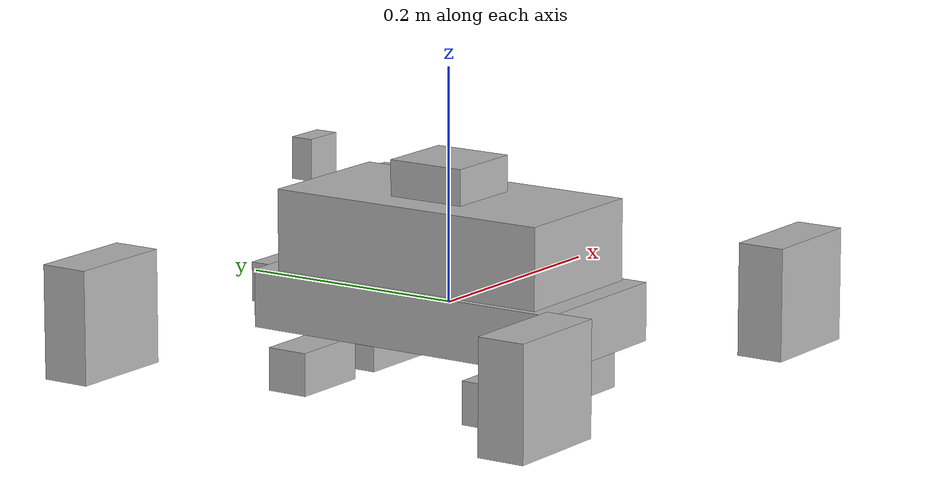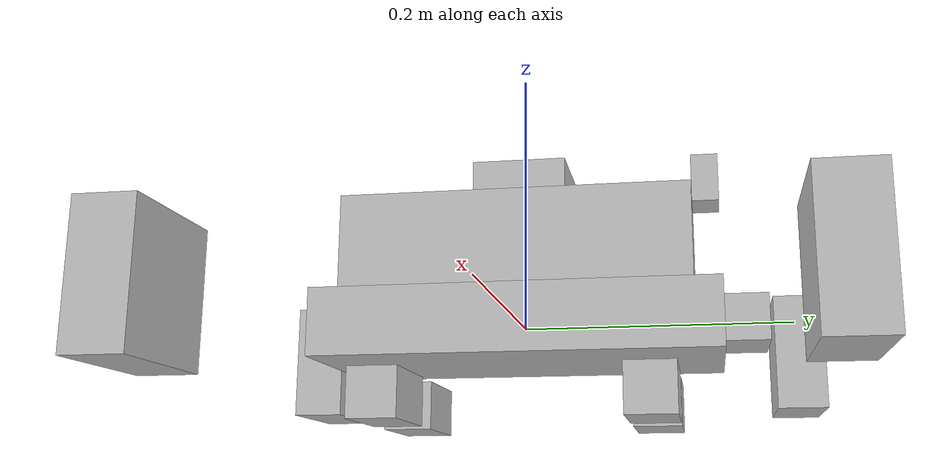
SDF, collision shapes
<?xml version="1.0" ?>
<sdf version="1.11">
  <model name="robot_urdf_export_final">
    <link name="base_link">
      <inertial>
        <mass>0.0001</mass>
        <inertia>
          <ixx>1e-09</ixx>
          <ixy>0</ixy>
          <ixz>0</ixz>
          <iyy>1e-09</iyy>
          <iyz>0</iyz>
          <izz>1e-09</izz>
        </inertia>
      </inertial>
    </link>
    <link name="bl_wheel_1">
      <pose relative_to="__model__">-0.09750000179931512 0.1076170507667783 -0.0001910611387656491 1.3877787807814733e-16 -1.1485604134442441e-14 -1.2281842209915672e-15</pose>
      <inertial>
        <mass>0.1449437592188408</mass>
        <inertia>
          <ixx>0.00010654272201079517</ixx>
          <ixy>2.168404344971009e-19</ixy>
          <ixz>4.743384504624082e-20</ixz>
          <iyy>0.00017047197881125617</iyy>
          <iyz>6.056285572868247e-20</iyz>
          <izz>0.00010654272201080081</izz>
        </inertia>
      </inertial>
      <visual name="bl_wheel_1__body1_visual">
        <geometry>
          <mesh>
            <scale>1 1 1</scale>
            <uri>meshes/bl_wheel_1/body1_visual.obj</uri>
          </mesh>
        </geometry>
      </visual>
      <collision name="bl_wheel_1__body1_collision">
        <pose relative_to="__model__">-0.09750000179931531 0.1076170507667783 -0.00019106226380321444 -0.0 -1.5707963267948966 0</pose>
        <geometry>
          <box>
            <size>0.09699999999999999 0.041999999999999996 0.09699999999999999</size>
          </box>
        </geometry>
      </collision>
    </link>
    <link name="chassis_1">
      <pose relative_to="__model__">0.000499998200684928 -0.00038294921086993837 -0.01369106116111193 -1.1679893163751844e-14 1.124100812432971e-14 1.5707963267948954</pose>
      <inertial>
        <pose>0.0014653952723043917 1.3863354933564373e-19 0.05260774865619107 1.1241008124329724e-14 1.1679893163751831e-14 -1.5707963267948954</pose>
        <mass>1.7958141054031582</mass>
        <inertia>
          <ixx>0.007164588768327979</ixx>
          <ixy>-4.646145122279288e-17</ixy>
          <ixz>-7.17945126092745e-17</ixz>
          <iyy>0.012760657231743477</iyy>
          <iyz>0.00011964838893943998</iyz>
          <izz>0.012436152193956957</izz>
        </inertia>
      </inertial>
      <visual name="chassis_1__casing_visual">
        <geometry>
          <mesh>
            <scale>1 1 1</scale>
            <uri>meshes/chassis_1/casing_visual.obj</uri>
          </mesh>
        </geometry>
      </visual>
      <visual name="chassis_1__battery_visual">
        <geometry>
          <mesh>
            <scale>1 1 1</scale>
            <uri>meshes/chassis_1/battery_visual.obj</uri>
          </mesh>
        </geometry>
      </visual>
      <visual name="chassis_1__powerbank_visual">
        <geometry>
          <mesh>
            <scale>1 1 1</scale>
            <uri>meshes/chassis_1/powerbank_visual.obj</uri>
          </mesh>
        </geometry>
      </visual>
      <visual name="chassis_1__upper_plate_visual">
        <geometry>
          <mesh>
            <scale>1 1 1</scale>
            <uri>meshes/chassis_1/upper_plate_visual.obj</uri>
          </mesh>
        </geometry>
      </visual>
      <collision name="chassis_1__casing_collision">
        <pose relative_to="__model__">0.0004999982006848392 -0.0003829492108701249 0.011308938838888883 -0.0 -1.5707963267948966 0</pose>
        <geometry>
          <box>
            <size>0.050000000000003465 0.145 0.29700000000000004</size>
          </box>
        </geometry>
      </collision>
      <collision name="chassis_1__battery_collision">
        <pose relative_to="__model__">0.000499998200684928 0.03961705078913 0.0008089388388886576 -0.0 -1.5707963267948966 0</pose>
        <geometry>
          <box>
            <size>0.025 0.045 0.135</size>
          </box>
        </geometry>
      </collision>
      <collision name="chassis_1__powerbank_collision">
        <pose relative_to="__model__">0.0004999982006848214 -0.030382949210869984 0.0028089388388894475 -0.0 -1.5707963267948966 0</pose>
        <geometry>
          <box>
            <size>0.029000000000000005 0.071 0.11000000000000001</size>
          </box>
        </geometry>
      </collision>
      <collision name="chassis_1__upper_plate_collision">
        <pose relative_to="__model__">0.0004999982006836313 -0.0003829492108684551 0.07130893883888692 -0.0 -1.5707963267948966 0</pose>
        <geometry>
          <box>
            <size>0.06999999999999779 0.132 0.257</size>
          </box>
        </geometry>
      </collision>
    </link>
    <link name="camera_1">
      <pose relative_to="__model__">0.000499998200684928 -0.00038294921086993837 -0.01369106116111193 -1.1679893163751844e-14 1.124100812432971e-14 1.5707963267948954</pose>
      <inertial>
        <pose>-3.846139202868901e-13 -0.13362720676622877 0.136 1.1241008124329724e-14 1.1679893163751831e-14 -1.5707963267948954</pose>
        <mass>0.0689942049710412</mass>
        <inertia>
          <ixx>1.143158030199624e-05</ixx>
          <ixy>1.9567350466168955e-16</ixy>
          <ixz>2.168404344971009e-19</ixz>
          <iyy>7.4980389861431865e-06</iyy>
          <iyz>3.3881317890172014e-21</iyz>
          <izz>7.498039092515996e-06</izz>
        </inertia>
      </inertial>
      <visual name="camera_1__camera_visual">
        <geometry>
          <mesh>
            <scale>1 1 1</scale>
            <uri>meshes/camera_1/camera_visual.obj</uri>
          </mesh>
        </geometry>
      </visual>
      <collision name="camera_1__camera_collision">
        <pose relative_to="__model__">0.13899999820068326 -0.00038294921086836855 0.1223089388388894 -0.0 -1.5707963267948966 0</pose>
        <geometry>
          <box>
            <size>0.03600000000000001 0.036000000536441805 0.020000000000000177</size>
          </box>
        </geometry>
      </collision>
    </link>
    <link name="lidar_1">
      <pose relative_to="__model__">0.0004999982006852988 -0.00038294921087043575 -0.04869106116111194 -1.1679893163751844e-14 1.124100812432971e-14 1.5707963267948954</pose>
      <inertial>
        <pose>-8.9607589936536e-18 -1.3185095470370538e-17 0.188 1.1241008124329724e-14 1.1679893163751831e-14 -1.5707963267948954</pose>
        <mass>1.9938824634354682</mass>
        <inertia>
          <ixx>0.0013344058386542332</ixx>
          <ixy>1.0587911840678754e-22</ixy>
          <ixz>2.7647155398380363e-18</ixz>
          <iyy>0.00133440583865415</iyy>
          <iyz>-1.3552527156068805e-20</iyz>
          <izz>0.0012212530088542076</izz>
        </inertia>
      </inertial>
      <visual name="lidar_1__lidar_body_visual">
        <geometry>
          <mesh>
            <scale>1 1 1</scale>
            <uri>meshes/lidar_1/lidar_body_visual.obj</uri>
          </mesh>
        </geometry>
      </visual>
      <collision name="lidar_1__lidar_body_collision">
        <pose relative_to="__model__">0.0004999982006827209 -0.0003829492108679533 0.13930893883888767 -0.0 -1.5707963267948966 0</pose>
        <geometry>
          <box>
            <size>0.06600000000000002 0.06999999999999999 0.06999999999999999</size>
          </box>
        </geometry>
      </collision>
    </link>
    <link name="hs_1">
      <pose relative_to="__model__">0.000499998200684928 -0.00038294921086993837 -0.01369106116111193 -1.1679893163751844e-14 1.124100812432971e-14 1.5707963267948954</pose>
      <inertial>
        <pose>-1.0167997441069341e-13 -0.16148736633795835 0.027425327037889732 1.1241008124329724e-14 1.1679893163751831e-14 -1.5707963267948954</pose>
        <mass>0.44159431453577835</mass>
        <inertia>
          <ixx>0.000191067815977005</ixx>
          <ixy>6.847380464285874e-16</ixy>
          <ixz>-2.86665840638781e-06</ixz>
          <iyy>6.834453630726912e-05</iyy>
          <iyz>2.963632757171236e-16</iyz>
          <izz>0.00017617307329049169</izz>
        </inertia>
      </inertial>
      <visual name="hs_1__hs_visual">
        <geometry>
          <mesh>
            <scale>1 1 1</scale>
            <uri>meshes/hs_1/hs_visual.obj</uri>
          </mesh>
        </geometry>
      </visual>
      <collision name="hs_1__hs_collision">
        <pose relative_to="__model__">0.16524999820068464 -0.0003829492108698229 0.013308938838890165 -0.0 -1.5707963267948966 0</pose>
        <geometry>
          <box>
            <size>0.034 0.06475000000000039 0.03249999999999977</size>
          </box>
        </geometry>
      </collision>
    </link>
    <link name="br_wheel_1">
      <pose relative_to="__model__">-0.09750000179931544 -0.1073829492332218 -0.000191061138765658 1.387778780781489e-16 -1.1485604134442441e-14 -1.2281842209915672e-15</pose>
      <inertial>
        <mass>0.1449437592188408</mass>
        <inertia>
          <ixx>0.00010654272201079539</ixx>
          <ixy>2.168404344971009e-19</ixy>
          <ixz>4.743384504624082e-20</ixz>
          <iyy>0.00017047197881125595</iyy>
          <iyz>6.056285572868247e-20</iyz>
          <izz>0.00010654272201079994</izz>
        </inertia>
      </inertial>
      <visual name="br_wheel_1__body1_visual">
        <geometry>
          <mesh>
            <scale>1 1 1</scale>
            <uri>meshes/br_wheel_1/body1_visual.obj</uri>
          </mesh>
        </geometry>
      </visual>
      <collision name="br_wheel_1__body1_collision">
        <pose relative_to="__model__">-0.09750000179931563 -0.1073829492332218 -0.00019106226380322333 -0.0 -1.5707963267948966 0</pose>
        <geometry>
          <box>
            <size>0.09699999999999999 0.041999999999999996 0.09699999999999999</size>
          </box>
        </geometry>
      </collision>
    </link>
    <link name="fr_wheel_1">
      <pose relative_to="__model__">0.09749999820068486 -0.10738294923322207 -0.00019106113876340202 1.387778780781489e-16 -1.1485604134442441e-14 -1.2281842209915672e-15</pose>
      <inertial>
        <mass>0.1449437592188408</mass>
        <inertia>
          <ixx>0.00010654272201079582</ixx>
          <ixy>2.168404344971009e-19</ixy>
          <ixz>4.785736151986797e-20</ixz>
          <iyy>0.00017047197881125639</iyy>
          <iyz>6.098637220230962e-20</iyz>
          <izz>0.00010654272201080037</izz>
        </inertia>
      </inertial>
      <visual name="fr_wheel_1__body1_visual">
        <geometry>
          <mesh>
            <scale>1 1 1</scale>
            <uri>meshes/fr_wheel_1/body1_visual.obj</uri>
          </mesh>
        </geometry>
      </visual>
      <collision name="fr_wheel_1__body1_collision">
        <pose relative_to="__model__">0.09749999820068467 -0.10738294923322207 -0.00019106226380096735 -0.0 -1.5707963267948966 0</pose>
        <geometry>
          <box>
            <size>0.09699999999999999 0.041999999999999996 0.09699999999999999</size>
          </box>
        </geometry>
      </collision>
    </link>
    <link name="fl_wheel_1">
      <pose relative_to="__model__">0.09749999820068499 0.10761705076677813 -0.00019106113876333098 1.3877787807814733e-16 -1.1485604134442441e-14 -1.2281842209915672e-15</pose>
      <inertial>
        <mass>0.1449437592188408</mass>
        <inertia>
          <ixx>0.00010654272201079539</ixx>
          <ixy>2.168404344971009e-19</ixy>
          <ixz>4.743384504624082e-20</ixz>
          <iyy>0.00017047197881125639</iyy>
          <iyz>6.056285572868247e-20</iyz>
          <izz>0.00010654272201079994</izz>
        </inertia>
      </inertial>
      <visual name="fl_wheel_1__body1_visual">
        <geometry>
          <mesh>
            <scale>1 1 1</scale>
            <uri>meshes/fl_wheel_1/body1_visual.obj</uri>
          </mesh>
        </geometry>
      </visual>
      <collision name="fl_wheel_1__body1_collision">
        <pose relative_to="__model__">0.09749999820068479 0.10761705076677813 -0.0001910622638008963 -0.0 -1.5707963267948966 0</pose>
        <geometry>
          <box>
            <size>0.09699999999999999 0.041999999999999996 0.09699999999999999</size>
          </box>
        </geometry>
      </collision>
    </link>
    <link name="imu_1">
      <pose relative_to="__model__">0.000499998200684928 -0.00038294921086993837 -0.01369106116111193 -1.1679893163751844e-14 1.124100812432971e-14 1.5707963267948954</pose>
      <inertial>
        <pose>-1.5937592292329663e-17 -0.01049999999999996 0.05675000000000001 1.1241008124329724e-14 1.1679893163751831e-14 -1.5707963267948954</pose>
        <mass>0.056166749999999974</mass>
        <inertia>
          <ixx>4.139957531250154e-06</ixx>
          <ixy>1.9852334701272664e-21</ixy>
          <ixz>-1.0164395367051604e-20</ixz>
          <iyy>2.725257515625047e-06</iyy>
          <iyz>3.017554874593445e-20</iyz>
          <izz>5.159150015624989e-06</izz>
        </inertia>
      </inertial>
      <visual name="imu_1__imu_visual">
        <geometry>
          <mesh>
            <scale>1 1 1</scale>
            <uri>meshes/imu_1/imu_visual.obj</uri>
          </mesh>
        </geometry>
      </visual>
      <collision name="imu_1__imu_collision">
        <pose relative_to="__model__">0.010999998200684305 -0.00038294921086940326 0.04305893883888817 -0.0 -1.5707963267948966 0</pose>
        <geometry>
          <box>
            <size>0.013499999999999996 0.026499999999999985 0.020000000000000004</size>
          </box>
        </geometry>
      </collision>
    </link>
    <link name="bl_motor_1">
      <pose relative_to="__model__">-0.010757026294846704 -0.0004141098856474734 -0.06070332375164084 -1.1679893163751845e-14 1.1236020794336278e-14 1.5707963267948954</pose>
      <inertial>
        <pose>0.043582546115938696 0.08674297550446795 0.06746351638411556 1.1236020794336292e-14 1.1679893163751833e-14 -1.5707963267948954</pose>
        <mass>0.15472387911182625</mass>
        <inertia>
          <ixx>5.6216088126908974e-05</ixx>
          <ixy>3.2526065174565133e-19</ixy>
          <ixz>3.3881317890172014e-19</ixz>
          <iyy>2.6350023109938947e-05</iyy>
          <iyz>2.7037138135237697e-07</iyz>
          <izz>5.616366154389857e-05</izz>
        </inertia>
      </inertial>
      <visual name="bl_motor_1__fr_motor_visual">
        <geometry>
          <mesh>
            <scale>1 1 1</scale>
            <uri>meshes/bl_motor_1/fr_motor_visual.obj</uri>
          </mesh>
        </geometry>
      </visual>
      <collision name="bl_motor_1__fr_motor_collision">
        <pose relative_to="__model__">-0.09750000179931538 0.05051705076677825 0.00680893773619696 -0.0 -1.5707963267948966 0</pose>
        <geometry>
          <box>
            <size>0.037000000000000005 0.07220000000000013 0.036999999999999984</size>
          </box>
        </geometry>
      </collision>
    </link>
    <link name="fr_motor_1">
      <pose relative_to="__model__">-0.01025702629484666 -0.00041410988564768644 -0.060703323751642814 -1.1652137588136216e-14 1.1243501789326427e-14 1.5707963267948954</pose>
      <inertial>
        <pose>-0.040952635689792134 -0.10775702449553214 0.06745842478335883 1.1243501789326441e-14 1.1652137588136204e-14 -1.5707963267948954</pose>
        <mass>0.15483729311989491</mass>
        <inertia>
          <ixx>5.644373880702634e-05</ixx>
          <ixy>-7.589415207398531e-19</ixy>
          <ixz>1.0842021724855044e-19</ixz>
          <iyy>2.635600961746476e-05</iyy>
          <iyz>-3.052300956287124e-07</iyz>
          <izz>5.638583607955232e-05</izz>
        </inertia>
      </inertial>
      <visual name="fr_motor_1__bl_motor_visual">
        <geometry>
          <mesh>
            <scale>1 1 1</scale>
            <uri>meshes/fr_motor_1/bl_motor_visual.obj</uri>
          </mesh>
        </geometry>
      </visual>
      <collision name="fr_motor_1__bl_motor_collision">
        <pose relative_to="__model__">0.09749999820068452 -0.04948294923322218 0.006808937736198835 -0.0 -1.5707963267948966 0</pose>
        <geometry>
          <box>
            <size>0.036999999999999984 0.07379999999999982 0.03699999999999999</size>
          </box>
        </geometry>
      </collision>
    </link>
    <link name="br_motor_1">
      <pose relative_to="__model__">-0.010757026294846792 -0.00041410988564765104 -0.0607033237516428 -1.1679893163751844e-14 1.1247947018233617e-14 1.5707963267948954</pose>
      <inertial>
        <pose>-0.04095263568979211 0.08674297550446802 0.06745842478335883 1.1247947018233631e-14 1.1679893163751831e-14 -1.5707963267948954</pose>
        <mass>0.15483729311989491</mass>
        <inertia>
          <ixx>5.644373880702634e-05</ixx>
          <ixy>2.168404344971009e-19</ixy>
          <ixz>1.6263032587282567e-19</ixz>
          <iyy>2.6356009617466494e-05</iyy>
          <iyz>-3.0523009562884114e-07</iyz>
          <izz>5.638583607955362e-05</izz>
        </inertia>
      </inertial>
      <visual name="br_motor_1__fl_motor_visual">
        <geometry>
          <mesh>
            <scale>1 1 1</scale>
            <uri>meshes/br_motor_1/fl_motor_visual.obj</uri>
          </mesh>
        </geometry>
      </visual>
      <collision name="br_motor_1__fl_motor_collision">
        <pose relative_to="__model__">-0.09750000179931564 -0.04948294923322191 0.006808937736196592 -0.0 -1.5707963267948966 0</pose>
        <geometry>
          <box>
            <size>0.03699999999999999 0.07379999999999982 0.036999999999999984</size>
          </box>
        </geometry>
      </collision>
    </link>
    <link name="fl_motor_1">
      <pose relative_to="__model__">-0.010257026294846767 -0.00041410988564738466 -0.0607033237516408 -1.1707648739367473e-14 1.1245019672367905e-14 1.5707963267948954</pose>
      <inertial>
        <pose>0.043582546115938675 -0.1077570244955321 0.06746351638411556 1.1245019672367919e-14 1.170764873936746e-14 -1.5707963267948954</pose>
        <mass>0.15472387911182625</mass>
        <inertia>
          <ixx>5.6216088126909245e-05</ixx>
          <ixy>0.0</ixy>
          <ixz>2.846030702774449e-19</ixz>
          <iyy>2.6350023109937646e-05</iyy>
          <iyz>2.703713813525667e-07</iyz>
          <izz>5.616366154389575e-05</izz>
        </inertia>
      </inertial>
      <visual name="fl_motor_1__br_motor_visual">
        <geometry>
          <mesh>
            <scale>1 1 1</scale>
            <uri>meshes/fl_motor_1/br_motor_visual.obj</uri>
          </mesh>
        </geometry>
      </visual>
      <collision name="fl_motor_1__br_motor_collision">
        <pose relative_to="__model__">0.09749999820068458 0.05051705076677809 0.006808937736199279 -0.0 -1.5707963267948966 0</pose>
        <geometry>
          <box>
            <size>0.037000000000000005 0.07220000000000013 0.03699999999999999</size>
          </box>
        </geometry>
      </collision>
    </link>
    <joint name="rigid_18" type="fixed">
      <parent>chassis_1</parent>
      <child>lidar_1</child>
      <axis/>
    </joint>
    <joint name="rigid_19" type="fixed">
      <parent>chassis_1</parent>
      <child>camera_1</child>
      <axis/>
    </joint>
    <joint name="rigid_20" type="fixed">
      <parent>chassis_1</parent>
      <child>imu_1</child>
      <axis/>
    </joint>
    <joint name="rigid_21" type="fixed">
      <parent>chassis_1</parent>
      <child>hs_1</child>
      <axis/>
    </joint>
    <joint name="rigid_22" type="fixed">
      <parent>chassis_1</parent>
      <child>fr_motor_1</child>
      <axis/>
    </joint>
    <joint name="rigid_23" type="fixed">
      <parent>chassis_1</parent>
      <child>fl_motor_1</child>
      <axis/>
    </joint>
    <joint name="rigid_24" type="fixed">
      <parent>chassis_1</parent>
      <child>bl_motor_1</child>
      <axis/>
    </joint>
    <joint name="rigid_25" type="fixed">
      <parent>chassis_1</parent>
      <child>br_motor_1</child>
      <axis/>
    </joint>
    <joint name="revolute_26" type="continuous">
  <pose relative_to="__model__">0 0 0 0 0 0</pose>
  <parent>br_motor_1</parent>
  <child>br_wheel_1</child>
  <axis><xyz>0 1 0</xyz></axis>
</joint>
    <joint name="revolute_27" type="continuous">
  <pose relative_to="__model__">0 0 0 0 0 0</pose>
  <parent>bl_motor_1</parent>
  <child>bl_wheel_1</child>
  <axis><xyz>0 1 0</xyz></axis>
</joint>
    <joint name="revolute_28" type="continuous">
  <pose relative_to="__model__">0 0 0 0 0 0</pose>
  <parent>fl_motor_1</parent>
  <child>fl_wheel_1</child>
  <axis><xyz>0 1 0</xyz></axis>
</joint>
    <joint name="revolute_29" type="continuous">
  <pose relative_to="__model__">0 0 0 0 0 0</pose>
  <parent>fr_motor_1</parent>
  <child>fr_wheel_1</child>
  <axis><xyz>0 1 0</xyz></axis>
</joint>
    <joint name="base_link_joint" type="fixed">
      <parent>base_link</parent>
      <child>chassis_1</child>
      <axis/>
    </joint>
  </model>
</sdf>
